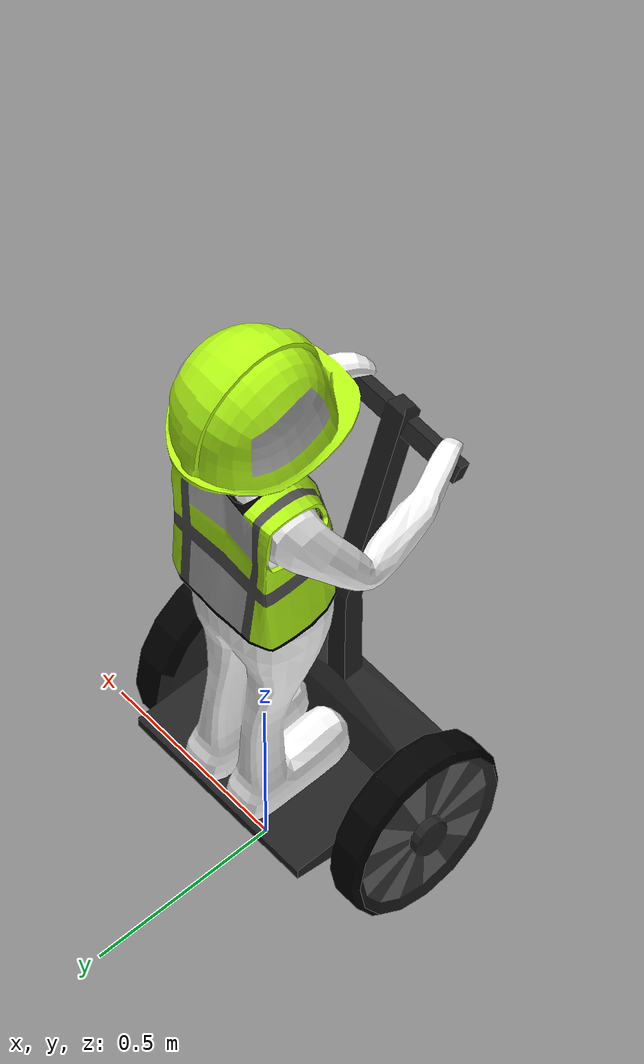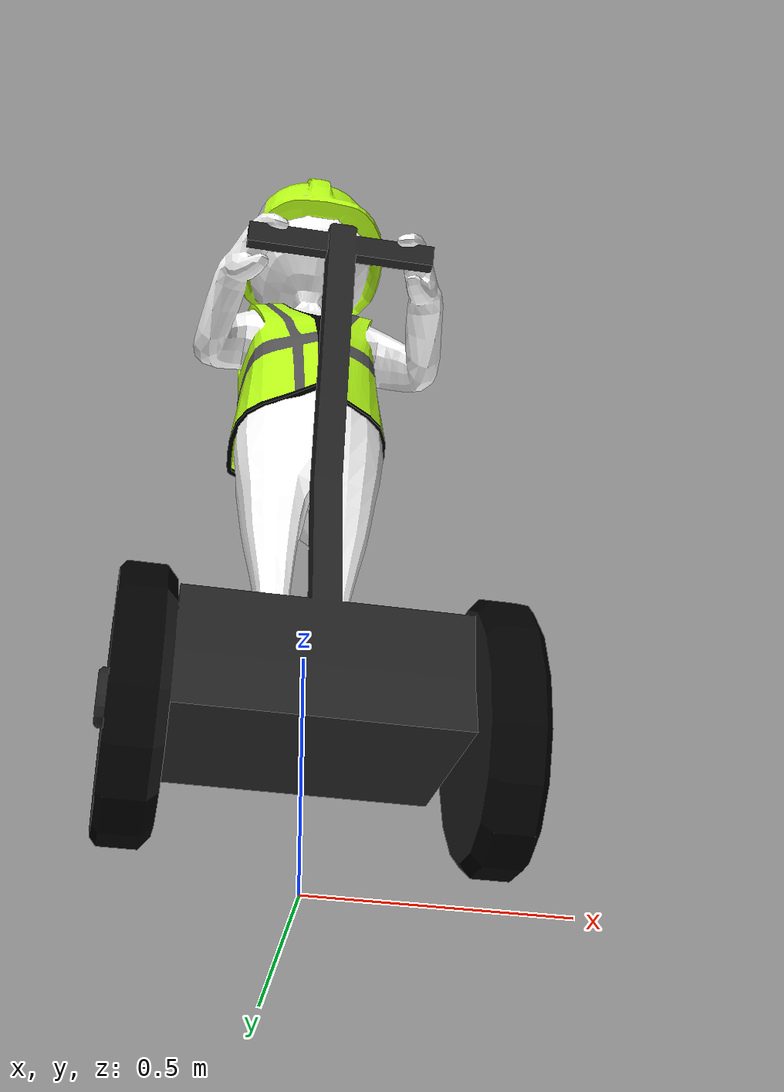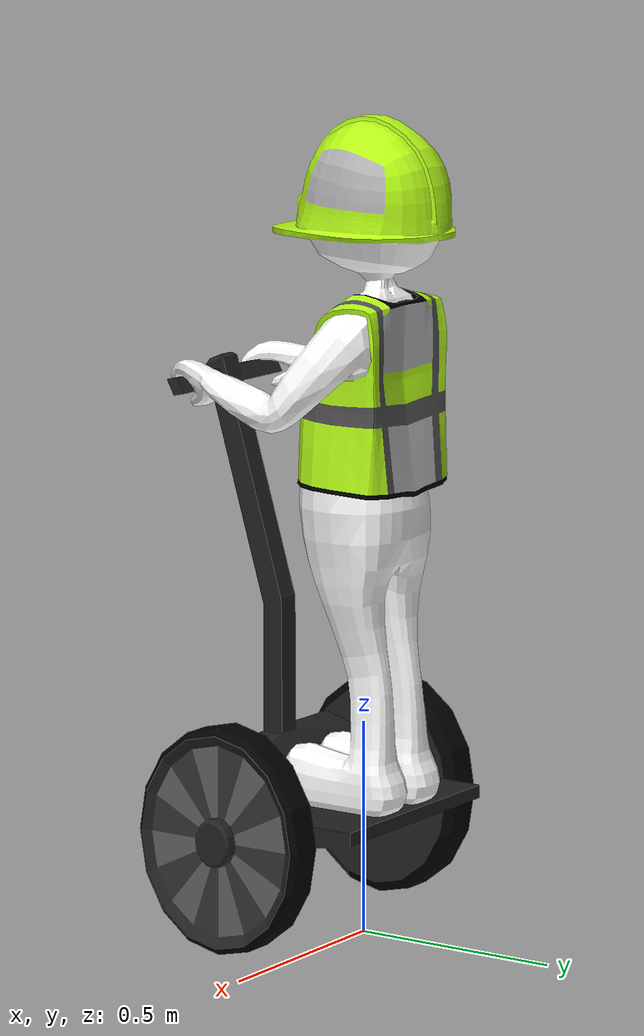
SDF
<?xml version="1.0" ?>
<sdf version="1.6">
  <model name="person_ariac">
    <static>false</static>
    <link name="link">
      <kinematic>1</kinematic>
      <inertial>
        <pose>0 0 0.15 0 0 0</pose>
        <mass>50.0</mass>
        <inertia>
          <ixx>4.525499333333333</ixx>
          <ixy>0</ixy>
          <ixz>0</ixz>
          <iyy>1.4504741933333334</iyy>
          <iyz>0</iyz>
          <izz>5.6426401933333326</izz>
        </inertia>
      </inertial>
      <collision name='collision'>
        <pose frame=''>0 0 1.0 0 0 0</pose>
        <geometry>
          <cylinder>
            <length>2.03</length>
            <radius>0.5</radius>
          </cylinder>
        </geometry>
        <surface>
          <contact>
            <ode>
              <max_vel>0.1</max_vel>
              <min_depth>0.001</min_depth>
            </ode>
          </contact>
        </surface>
      </collision>
      <visual name="visual">
         <geometry>
           <mesh>
             <uri>model://person_ariac/meshes/ARIACPerson.dae</uri>
             <scale>1 1 1.2</scale>
           </mesh>
         </geometry>
        <material>
          <script>
            <uri>model://person_ariac/materials/textures</uri>
          </script>
        </material>
       </visual>
    </link>
  </model>
</sdf>
